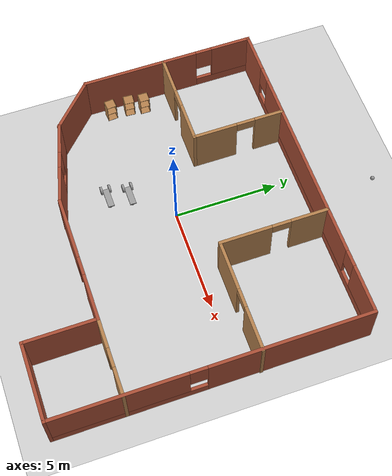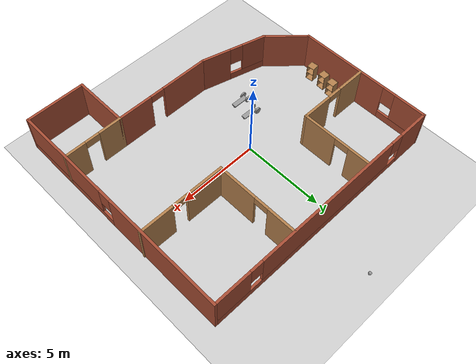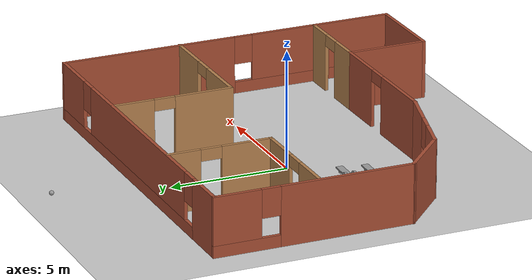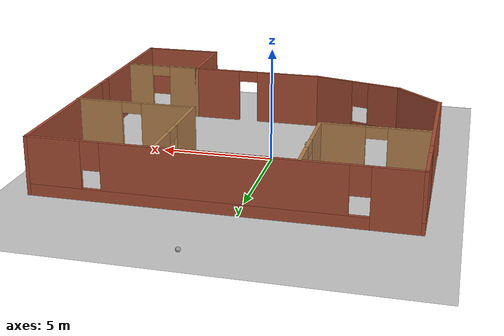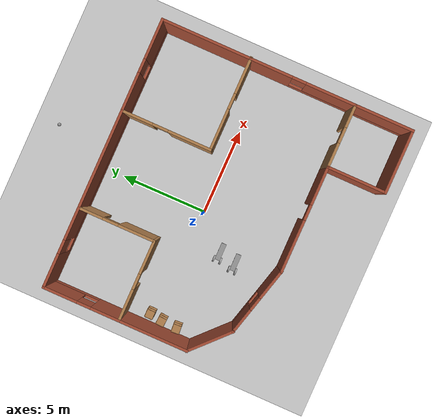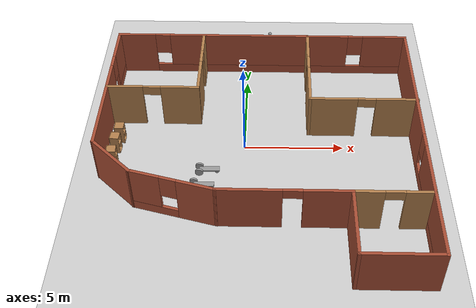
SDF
<sdf version="1.4">
 <world name="default">
  <plugin name="wellcome" filename="libwellcome.so"/>
  <light name="sun" type="directional">
   <pose>0 0 10 0 -0 0</pose>
   <diffuse>0.8 0.8 0.8 1</diffuse>
   <specular>0.2 0.2 0.2 1</specular>
   <attenuation>
    <range>1000</range>
    <constant>0.9</constant>
    <linear>0.01</linear>
    <quadratic>0.001</quadratic>
   </attenuation>
   <direction>-0.5 0.1 -0.9</direction>
  </light>
  <model name="ground_plane">
   <static>1</static>
   <link name="link">
    <collision name="collision">
     <geometry><plane><normal>0 0 1</normal><size>100 100</size></plane></geometry>
     <surface><friction><ode><mu>100</mu><mu2>50</mu2></ode></friction></surface>
    </collision>
    <visual name="visual">
     <cast_shadows>0</cast_shadows>
     <geometry><plane><normal>0 0 1</normal><size>100 100</size></plane></geometry>
     <material>
      <script><uri>file://media/materials/scripts/gazebo.material</uri><name>Gazebo/Grey</name></script>
     </material>
    </visual>
   </link>
  </model>
  <gravity>0 0 -9.8</gravity>
  <magnetic_field>6e-06 2.3e-05 -4.2e-05</magnetic_field>
  <atmosphere type="adiabatic"/>
  <physics name="default_physics" default="0" type="ode">
   <max_step_size>0.001</max_step_size>
   <real_time_factor>1</real_time_factor>
   <real_time_update_rate>1000</real_time_update_rate>
  </physics>
  <scene><ambient>0.4 0.4 0.4 1</ambient><background>0.7 0.7 0.7 1</background><shadows>1</shadows></scene>
  <spherical_coordinates>
   <surface_model>EARTH_WGS84</surface_model>
   <latitude_deg>0</latitude_deg>
   <longitude_deg>0</longitude_deg>
   <elevation>0</elevation>
   <heading_deg>0</heading_deg>
  </spherical_coordinates>
  <model name="Building1">
   <pose>0.77481 -1.15108 0 0 -0 0</pose>
   <link name="Wall_0">
    <pose>-7.80588 3.125 0 0 -0 1.5708</pose>
    <visual name="Wall_0_Visual_0">
     <pose>-1.4063 0 1.25 0 -0 0</pose>
     <geometry><box><size>5.68739 0.15 2.5</size></box></geometry>
     <material>
      <script><uri>file://media/materials/scripts/gazebo.material</uri><name>Gazebo/Bricks</name></script>
      <ambient>1 1 1 1</ambient>
     </material>
     <meta><layer>0</layer></meta>
    </visual>
    <collision name="Wall_0_Collision_0">
     <geometry><box><size>5.68739 0.15 2.5</size></box></geometry>
     <pose>-1.4063 0 1.25 0 -0 0</pose>
    </collision>
    <visual name="Wall_0_Visual_1">
     <pose>2.8437 0 0.25 0 -0 0</pose>
     <geometry><box><size>2.81261 0.15 0.5</size></box></geometry>
     <material>
      <script><uri>file://media/materials/scripts/gazebo.material</uri><name>Gazebo/Bricks</name></script>
      <ambient>1 1 1 1</ambient>
     </material>
     <meta><layer>0</layer></meta>
    </visual>
    <collision name="Wall_0_Collision_1">
     <geometry><box><size>2.81261 0.15 0.5</size></box></geometry>
     <pose>2.8437 0 0.25 0 -0 0</pose>
    </collision>
    <visual name="Wall_0_Visual_2">
     <pose>3.2437 0 1.5 0 -0 0</pose>
     <geometry><box><size>2.01261 0.15 2</size></box></geometry>
     <material>
      <script><uri>file://media/materials/scripts/gazebo.material</uri><name>Gazebo/Bricks</name></script>
      <ambient>1 1 1 1</ambient>
     </material>
     <meta><layer>0</layer></meta>
    </visual>
    <collision name="Wall_0_Collision_2">
     <geometry><box><size>2.01261 0.15 2</size></box></geometry>
     <pose>3.2437 0 1.5 0 -0 0</pose>
    </collision>
    <visual name="Wall_0_Visual_3">
     <pose>1.83739 0 1.9 0 -0 0</pose>
     <geometry><box><size>0.8 0.15 1.2</size></box></geometry>
     <material>
      <script><uri>file://media/materials/scripts/gazebo.material</uri><name>Gazebo/Bricks</name></script>
      <ambient>1 1 1 1</ambient>
     </material>
     <meta><layer>0</layer></meta>
    </visual>
    <collision name="Wall_0_Collision_3">
     <geometry><box><size>0.8 0.15 1.2</size></box></geometry>
     <pose>1.83739 0 1.9 0 -0 0</pose>
    </collision>
   </link>
   <link name="Wall_1">
    <pose>-0.00588 7.3 0 0 -0 0</pose>
    <visual name="Wall_1_Visual_0">
     <pose>-6.85763 0 1.25 0 -0 0</pose>
     <geometry><box><size>2.03474 0.15 2.5</size></box></geometry>
     <material>
      <script><uri>file://media/materials/scripts/gazebo.material</uri><name>Gazebo/Bricks</name></script>
      <ambient>1 1 1 1</ambient>
     </material>
     <meta><layer>0</layer></meta>
    </visual>
    <collision name="Wall_1_Collision_0">
     <geometry><box><size>2.03474 0.15 2.5</size></box></geometry>
     <pose>-6.85763 0 1.25 0 -0 0</pose>
    </collision>
    <visual name="Wall_1_Visual_1">
     <pose>1.01737 0 0.25 0 -0 0</pose>
     <geometry><box><size>13.7153 0.15 0.5</size></box></geometry>
     <material>
      <script><uri>file://media/materials/scripts/gazebo.material</uri><name>Gazebo/Bricks</name></script>
      <ambient>1 1 1 1</ambient>
     </material>
     <meta><layer>0</layer></meta>
    </visual>
    <collision name="Wall_1_Collision_1">
     <geometry><box><size>13.7153 0.15 0.5</size></box></geometry>
     <pose>1.01737 0 0.25 0 -0 0</pose>
    </collision>
    <visual name="Wall_1_Visual_2">
     <pose>-0.167606 0 1.5 0 -0 0</pose>
     <geometry><box><size>9.74531 0.15 2</size></box></geometry>
     <material>
      <script><uri>file://media/materials/scripts/gazebo.material</uri><name>Gazebo/Bricks</name></script>
      <ambient>1 1 1 1</ambient>
     </material>
     <meta><layer>0</layer></meta>
    </visual>
    <collision name="Wall_1_Collision_2">
     <geometry><box><size>9.74531 0.15 2</size></box></geometry>
     <pose>-0.167606 0 1.5 0 -0 0</pose>
    </collision>
    <visual name="Wall_1_Visual_3">
     <pose>6.69002 0 1.5 0 -0 0</pose>
     <geometry><box><size>2.36995 0.15 2</size></box></geometry>
     <material>
      <script><uri>file://media/materials/scripts/gazebo.material</uri><name>Gazebo/Bricks</name></script>
      <ambient>1 1 1 1</ambient>
     </material>
     <meta><layer>0</layer></meta>
    </visual>
    <collision name="Wall_1_Collision_3">
     <geometry><box><size>2.36995 0.15 2</size></box></geometry>
     <pose>6.69002 0 1.5 0 -0 0</pose>
    </collision>
    <visual name="Wall_1_Visual_4">
     <pose>-5.44026 0 1.9 0 -0 0</pose>
     <geometry><box><size>0.8 0.15 1.2</size></box></geometry>
     <material>
      <script><uri>file://media/materials/scripts/gazebo.material</uri><name>Gazebo/Bricks</name></script>
      <ambient>1 1 1 1</ambient>
     </material>
     <meta><layer>0</layer></meta>
    </visual>
    <collision name="Wall_1_Collision_4">
     <geometry><box><size>0.8 0.15 1.2</size></box></geometry>
     <pose>-5.44026 0 1.9 0 -0 0</pose>
    </collision>
    <visual name="Wall_1_Visual_5">
     <pose>5.10505 0 1.9 0 -0 0</pose>
     <geometry><box><size>0.8 0.15 1.2</size></box></geometry>
     <material>
      <script><uri>file://media/materials/scripts/gazebo.material</uri><name>Gazebo/Bricks</name></script>
      <ambient>1 1 1 1</ambient>
     </material>
     <meta><layer>0</layer></meta>
    </visual>
    <collision name="Wall_1_Collision_5">
     <geometry><box><size>0.8 0.15 1.2</size></box></geometry>
     <pose>5.10505 0 1.9 0 -0 0</pose>
    </collision>
   </link>
   <link name="Wall_10">
    <pose>-5.47687 2.90704 0 0 -0 3.14159</pose>
    <visual name="Wall_10_Visual_0">
     <pose>-1.38853 0 1.25 0 -0 0</pose>
     <geometry><box><size>1.97295 0.15 2.5</size></box></geometry>
     <material>
      <script><uri>file://media/materials/scripts/gazebo.material</uri><name>Gazebo/Wood</name></script>
      <ambient>1 1 1 1</ambient>
     </material>
     <meta><layer>0</layer></meta>
    </visual>
    <collision name="Wall_10_Collision_0">
     <geometry><box><size>1.97295 0.15 2.5</size></box></geometry>
     <pose>-1.38853 0 1.25 0 -0 0</pose>
    </collision>
    <visual name="Wall_10_Visual_1">
     <pose>1.43647 0 1.25 0 -0 0</pose>
     <geometry><box><size>1.87705 0.15 2.5</size></box></geometry>
     <material>
      <script><uri>file://media/materials/scripts/gazebo.material</uri><name>Gazebo/Wood</name></script>
      <ambient>1 1 1 1</ambient>
     </material>
     <meta><layer>0</layer></meta>
    </visual>
    <collision name="Wall_10_Collision_1">
     <geometry><box><size>1.87705 0.15 2.5</size></box></geometry>
     <pose>1.43647 0 1.25 0 -0 0</pose>
    </collision>
    <visual name="Wall_10_Visual_2">
     <pose>0.047946 0 2.25 0 -0 0</pose>
     <geometry><box><size>0.9 0.15 0.5</size></box></geometry>
     <material>
      <script><uri>file://media/materials/scripts/gazebo.material</uri><name>Gazebo/Wood</name></script>
      <ambient>1 1 1 1</ambient>
     </material>
     <meta><layer>0</layer></meta>
    </visual>
    <collision name="Wall_10_Collision_2">
     <geometry><box><size>0.9 0.15 0.5</size></box></geometry>
     <pose>0.047946 0 2.25 0 -0 0</pose>
    </collision>
   </link>
   <link name="Wall_12">
    <pose>5.99412 -3.95 0 0 -0 0</pose>
    <visual name="Wall_12_Visual_0">
     <pose>-1.13506 0 1.25 0 -0 0</pose>
     <geometry><box><size>1.47988 0.15 2.5</size></box></geometry>
     <material>
      <script><uri>file://media/materials/scripts/gazebo.material</uri><name>Gazebo/Wood</name></script>
      <ambient>1 1 1 1</ambient>
     </material>
     <meta><layer>0</layer></meta>
    </visual>
    <collision name="Wall_12_Collision_0">
     <geometry><box><size>1.47988 0.15 2.5</size></box></geometry>
     <pose>-1.13506 0 1.25 0 -0 0</pose>
    </collision>
    <visual name="Wall_12_Visual_1">
     <pose>1.18994 0 1.25 0 -0 0</pose>
     <geometry><box><size>1.37013 0.15 2.5</size></box></geometry>
     <material>
      <script><uri>file://media/materials/scripts/gazebo.material</uri><name>Gazebo/Wood</name></script>
      <ambient>1 1 1 1</ambient>
     </material>
     <meta><layer>0</layer></meta>
    </visual>
    <collision name="Wall_12_Collision_1">
     <geometry><box><size>1.37013 0.15 2.5</size></box></geometry>
     <pose>1.18994 0 1.25 0 -0 0</pose>
    </collision>
    <visual name="Wall_12_Visual_2">
     <pose>0.054875 0 2.25 0 -0 0</pose>
     <geometry><box><size>0.9 0.15 0.5</size></box></geometry>
     <material>
      <script><uri>file://media/materials/scripts/gazebo.material</uri><name>Gazebo/Wood</name></script>
      <ambient>1 1 1 1</ambient>
     </material>
     <meta><layer>0</layer></meta>
    </visual>
    <collision name="Wall_12_Collision_2">
     <geometry><box><size>0.9 0.15 0.5</size></box></geometry>
     <pose>0.054875 0 2.25 0 -0 0</pose>
    </collision>
   </link>
   <link name="Wall_17">
    <pose>2.48691 4.70704 0 0 0 -1.5708</pose>
    <visual name="Wall_17_Visual_0">
     <pose>-1.71972 0 1.25 0 -0 0</pose>
     <geometry><box><size>1.81055 0.15 2.5</size></box></geometry>
     <material>
      <script><uri>file://media/materials/scripts/gazebo.material</uri><name>Gazebo/Wood</name></script>
      <ambient>1 1 1 1</ambient>
     </material>
     <meta><layer>0</layer></meta>
    </visual>
    <collision name="Wall_17_Collision_0">
     <geometry><box><size>1.81055 0.15 2.5</size></box></geometry>
     <pose>-1.71972 0 1.25 0 -0 0</pose>
    </collision>
    <visual name="Wall_17_Visual_1">
     <pose>1.35528 0 1.25 0 -0 0</pose>
     <geometry><box><size>2.53945 0.15 2.5</size></box></geometry>
     <material>
      <script><uri>file://media/materials/scripts/gazebo.material</uri><name>Gazebo/Wood</name></script>
      <ambient>1 1 1 1</ambient>
     </material>
     <meta><layer>0</layer></meta>
    </visual>
    <collision name="Wall_17_Collision_1">
     <geometry><box><size>2.53945 0.15 2.5</size></box></geometry>
     <pose>1.35528 0 1.25 0 -0 0</pose>
    </collision>
    <visual name="Wall_17_Visual_2">
     <pose>-0.364448 0 2.25 0 -0 0</pose>
     <geometry><box><size>0.9 0.15 0.5</size></box></geometry>
     <material>
      <script><uri>file://media/materials/scripts/gazebo.material</uri><name>Gazebo/Wood</name></script>
      <ambient>1 1 1 1</ambient>
     </material>
     <meta><layer>0</layer></meta>
    </visual>
    <collision name="Wall_17_Collision_2">
     <geometry><box><size>0.9 0.15 0.5</size></box></geometry>
     <pose>-0.364448 0 2.25 0 -0 0</pose>
    </collision>
   </link>
   <link name="Wall_18">
    <pose>5.16191 2.15704 0 0 -0 0</pose>
    <visual name="Wall_18_Visual_0">
     <pose>-1.52583 0 1.25 0 -0 0</pose>
     <geometry><box><size>2.44833 0.15 2.5</size></box></geometry>
     <material>
      <script><uri>file://media/materials/scripts/gazebo.material</uri><name>Gazebo/Wood</name></script>
      <ambient>1 1 1 1</ambient>
     </material>
     <meta><layer>0</layer></meta>
    </visual>
    <collision name="Wall_18_Collision_0">
     <geometry><box><size>2.44833 0.15 2.5</size></box></geometry>
     <pose>-1.52583 0 1.25 0 -0 0</pose>
    </collision>
    <visual name="Wall_18_Visual_1">
     <pose>1.67417 0 1.25 0 -0 0</pose>
     <geometry><box><size>2.15167 0.15 2.5</size></box></geometry>
     <material>
      <script><uri>file://media/materials/scripts/gazebo.material</uri><name>Gazebo/Wood</name></script>
      <ambient>1 1 1 1</ambient>
     </material>
     <meta><layer>0</layer></meta>
    </visual>
    <collision name="Wall_18_Collision_1">
     <geometry><box><size>2.15167 0.15 2.5</size></box></geometry>
     <pose>1.67417 0 1.25 0 -0 0</pose>
    </collision>
    <visual name="Wall_18_Visual_2">
     <pose>0.148333 0 2.25 0 -0 0</pose>
     <geometry><box><size>0.9 0.15 0.5</size></box></geometry>
     <material>
      <script><uri>file://media/materials/scripts/gazebo.material</uri><name>Gazebo/Wood</name></script>
      <ambient>1 1 1 1</ambient>
     </material>
     <meta><layer>0</layer></meta>
    </visual>
    <collision name="Wall_18_Collision_2">
     <geometry><box><size>0.9 0.15 0.5</size></box></geometry>
     <pose>0.148333 0 2.25 0 -0 0</pose>
    </collision>
   </link>
   <link name="Wall_2">
    <pose>7.79412 0 0 0 0 -1.5708</pose>
    <visual name="Wall_2_Visual_0">
     <pose>-3.54908 0 1.25 0 -0 0</pose>
     <geometry><box><size>7.65185 0.15 2.5</size></box></geometry>
     <material>
      <script><uri>file://media/materials/scripts/gazebo.material</uri><name>Gazebo/Bricks</name></script>
      <ambient>1 1 1 1</ambient>
     </material>
     <meta><layer>0</layer></meta>
    </visual>
    <collision name="Wall_2_Collision_0">
     <geometry><box><size>7.65185 0.15 2.5</size></box></geometry>
     <pose>-3.54908 0 1.25 0 -0 0</pose>
    </collision>
    <visual name="Wall_2_Visual_1">
     <pose>3.82592 0 0.25 0 -0 0</pose>
     <geometry><box><size>7.09815 0.15 0.5</size></box></geometry>
     <material>
      <script><uri>file://media/materials/scripts/gazebo.material</uri><name>Gazebo/Bricks</name></script>
      <ambient>1 1 1 1</ambient>
     </material>
     <meta><layer>0</layer></meta>
    </visual>
    <collision name="Wall_2_Collision_1">
     <geometry><box><size>7.09815 0.15 0.5</size></box></geometry>
     <pose>3.82592 0 0.25 0 -0 0</pose>
    </collision>
    <visual name="Wall_2_Visual_2">
     <pose>4.22592 0 1.5 0 -0 0</pose>
     <geometry><box><size>6.29815 0.15 2</size></box></geometry>
     <material>
      <script><uri>file://media/materials/scripts/gazebo.material</uri><name>Gazebo/Bricks</name></script>
      <ambient>1 1 1 1</ambient>
     </material>
     <meta><layer>0</layer></meta>
    </visual>
    <collision name="Wall_2_Collision_2">
     <geometry><box><size>6.29815 0.15 2</size></box></geometry>
     <pose>4.22592 0 1.5 0 -0 0</pose>
    </collision>
    <visual name="Wall_2_Visual_3">
     <pose>0.676848 0 1.9 0 -0 0</pose>
     <geometry><box><size>0.8 0.15 1.2</size></box></geometry>
     <material>
      <script><uri>file://media/materials/scripts/gazebo.material</uri><name>Gazebo/Bricks</name></script>
      <ambient>1 1 1 1</ambient>
     </material>
     <meta><layer>0</layer></meta>
    </visual>
    <collision name="Wall_2_Collision_3">
     <geometry><box><size>0.8 0.15 1.2</size></box></geometry>
     <pose>0.676848 0 1.9 0 -0 0</pose>
    </collision>
   </link>
   <link name="Wall_3">
    <collision name="Wall_3_Collision">
     <geometry><box><size>3.75 0.15 2.5</size></box></geometry>
     <pose>0 0 1.25 0 -0 0</pose>
    </collision>
    <visual name="Wall_3_Visual">
     <pose>0 0 1.25 0 -0 0</pose>
     <geometry><box><size>3.75 0.15 2.5</size></box></geometry>
     <material>
      <script><uri>file://media/materials/scripts/gazebo.material</uri><name>Gazebo/Bricks</name></script>
      <ambient>1 1 1 1</ambient>
     </material>
     <meta><layer>0</layer></meta>
    </visual>
    <pose>5.99412 -7.3 0 0 -0 3.14159</pose>
   </link>
   <link name="Wall_4">
    <collision name="Wall_4_Collision">
     <geometry><box><size>3.5 0.15 2.5</size></box></geometry>
     <pose>0 0 1.25 0 -0 0</pose>
    </collision>
    <visual name="Wall_4_Visual">
     <pose>0 0 1.25 0 -0 0</pose>
     <geometry><box><size>3.5 0.15 2.5</size></box></geometry>
     <material>
      <script><uri>file://media/materials/scripts/gazebo.material</uri><name>Gazebo/Bricks</name></script>
      <ambient>1 1 1 1</ambient>
     </material>
     <meta><layer>0</layer></meta>
    </visual>
    <pose>4.19412 -5.625 0 0 -0 1.5708</pose>
   </link>
   <link name="Wall_5">
    <pose>1.14412 -3.95 0 0 -0 3.14159</pose>
    <visual name="Wall_5_Visual_0">
     <pose>-1.9885 0 1.25 0 -0 0</pose>
     <geometry><box><size>2.27301 0.15 2.5</size></box></geometry>
     <material>
      <script><uri>file://media/materials/scripts/gazebo.material</uri><name>Gazebo/Bricks</name></script>
      <ambient>1 1 1 1</ambient>
     </material>
     <meta><layer>0</layer></meta>
    </visual>
    <collision name="Wall_5_Collision_0">
     <geometry><box><size>2.27301 0.15 2.5</size></box></geometry>
     <pose>-1.9885 0 1.25 0 -0 0</pose>
    </collision>
    <visual name="Wall_5_Visual_1">
     <pose>1.5865 0 1.25 0 -0 0</pose>
     <geometry><box><size>3.07699 0.15 2.5</size></box></geometry>
     <material>
      <script><uri>file://media/materials/scripts/gazebo.material</uri><name>Gazebo/Bricks</name></script>
      <ambient>1 1 1 1</ambient>
     </material>
     <meta><layer>0</layer></meta>
    </visual>
    <collision name="Wall_5_Collision_1">
     <geometry><box><size>3.07699 0.15 2.5</size></box></geometry>
     <pose>1.5865 0 1.25 0 -0 0</pose>
    </collision>
    <visual name="Wall_5_Visual_2">
     <pose>-0.401994 0 2.25 0 -0 0</pose>
     <geometry><box><size>0.9 0.15 0.5</size></box></geometry>
     <material>
      <script><uri>file://media/materials/scripts/gazebo.material</uri><name>Gazebo/Bricks</name></script>
      <ambient>1 1 1 1</ambient>
     </material>
     <meta><layer>0</layer></meta>
    </visual>
    <collision name="Wall_5_Collision_2">
     <geometry><box><size>0.9 0.15 0.5</size></box></geometry>
     <pose>-0.401994 0 2.25 0 -0 0</pose>
    </collision>
   </link>
   <link name="Wall_6">
    <pose>-3.88603 -3.41942 0 0 -0 2.87979</pose>
    <visual name="Wall_6_Visual_0">
     <pose>-1.17839 0 1.25 0 -0 0</pose>
     <geometry><box><size>1.89321 0.15 2.5</size></box></geometry>
     <material>
      <script><uri>file://media/materials/scripts/gazebo.material</uri><name>Gazebo/Bricks</name></script>
      <ambient>1 1 1 1</ambient>
     </material>
     <meta><layer>0</layer></meta>
    </visual>
    <collision name="Wall_6_Collision_0">
     <geometry><box><size>1.89321 0.15 2.5</size></box></geometry>
     <pose>-1.17839 0 1.25 0 -0 0</pose>
    </collision>
    <visual name="Wall_6_Visual_1">
     <pose>0.946606 0 0.25 0 -0 0</pose>
     <geometry><box><size>2.35679 0.15 0.5</size></box></geometry>
     <material>
      <script><uri>file://media/materials/scripts/gazebo.material</uri><name>Gazebo/Bricks</name></script>
      <ambient>1 1 1 1</ambient>
     </material>
     <meta><layer>0</layer></meta>
    </visual>
    <collision name="Wall_6_Collision_1">
     <geometry><box><size>2.35679 0.15 0.5</size></box></geometry>
     <pose>0.946606 0 0.25 0 -0 0</pose>
    </collision>
    <visual name="Wall_6_Visual_2">
     <pose>1.34661 0 1.5 0 -0 0</pose>
     <geometry><box><size>1.55679 0.15 2</size></box></geometry>
     <material>
      <script><uri>file://media/materials/scripts/gazebo.material</uri><name>Gazebo/Bricks</name></script>
      <ambient>1 1 1 1</ambient>
     </material>
     <meta><layer>0</layer></meta>
    </visual>
    <collision name="Wall_6_Collision_2">
     <geometry><box><size>1.55679 0.15 2</size></box></geometry>
     <pose>1.34661 0 1.5 0 -0 0</pose>
    </collision>
    <visual name="Wall_6_Visual_3">
     <pose>0.168212 0 1.9 0 -0 0</pose>
     <geometry><box><size>0.8 0.15 1.2</size></box></geometry>
     <material>
      <script><uri>file://media/materials/scripts/gazebo.material</uri><name>Gazebo/Bricks</name></script>
      <ambient>1 1 1 1</ambient>
     </material>
     <meta><layer>0</layer></meta>
    </visual>
    <collision name="Wall_6_Collision_3">
     <geometry><box><size>0.8 0.15 1.2</size></box></geometry>
     <pose>0.168212 0 1.9 0 -0 0</pose>
    </collision>
   </link>
   <link name="Wall_7">
    <collision name="Wall_7_Collision">
     <geometry><box><size>2.82279 0.15 2.5</size></box></geometry>
     <pose>0 0 1.25 0 -0 0</pose>
    </collision>
    <visual name="Wall_7_Visual">
     <pose>0 0 1.25 0 -0 0</pose>
     <geometry><box><size>2.82279 0.15 2.5</size></box></geometry>
     <material>
      <script><uri>file://media/materials/scripts/gazebo.material</uri><name>Gazebo/Bricks</name></script>
      <ambient>1 1 1 1</ambient>
     </material>
     <meta><layer>0</layer></meta>
    </visual>
    <pose>-6.83603 -1.96942 0 0 -0 2.38288</pose>
   </link>
   <link name="Wall_9">
    <pose>-3.17687 5.08204 0 0 0 -1.5708</pose>
    <visual name="Wall_9_Visual_0">
     <pose>-1.53821 0 1.25 0 -0 0</pose>
     <geometry><box><size>1.42359 0.15 2.5</size></box></geometry>
     <material>
      <script><uri>file://media/materials/scripts/gazebo.material</uri><name>Gazebo/Wood</name></script>
      <ambient>1 1 1 1</ambient>
     </material>
     <meta><layer>0</layer></meta>
    </visual>
    <collision name="Wall_9_Collision_0">
     <geometry><box><size>1.42359 0.15 2.5</size></box></geometry>
     <pose>-1.53821 0 1.25 0 -0 0</pose>
    </collision>
    <visual name="Wall_9_Visual_1">
     <pose>1.16179 0 1.25 0 -0 0</pose>
     <geometry><box><size>2.17641 0.15 2.5</size></box></geometry>
     <material>
      <script><uri>file://media/materials/scripts/gazebo.material</uri><name>Gazebo/Wood</name></script>
      <ambient>1 1 1 1</ambient>
     </material>
     <meta><layer>0</layer></meta>
    </visual>
    <collision name="Wall_9_Collision_1">
     <geometry><box><size>2.17641 0.15 2.5</size></box></geometry>
     <pose>1.16179 0 1.25 0 -0 0</pose>
    </collision>
    <visual name="Wall_9_Visual_2">
     <pose>-0.376414 0 2.25 0 -0 0</pose>
     <geometry><box><size>0.9 0.15 0.5</size></box></geometry>
     <material>
      <script><uri>file://media/materials/scripts/gazebo.material</uri><name>Gazebo/Wood</name></script>
      <ambient>1 1 1 1</ambient>
     </material>
     <meta><layer>0</layer></meta>
    </visual>
    <collision name="Wall_9_Collision_2">
     <geometry><box><size>0.9 0.15 0.5</size></box></geometry>
     <pose>-0.376414 0 2.25 0 -0 0</pose>
    </collision>
   </link>
   <static>1</static>
  </model>
  <model name="Car">
   <link name="link_0">
    <pose>0.16 0.005005 0.0325 0 -0 0</pose>
    <inertial>
     <mass>1</mass>
     <inertia>
      <ixx>0.166667</ixx>
      <ixy>0</ixy>
      <ixz>0</ixz>
      <iyy>0.166667</iyy>
      <iyz>0</iyz>
      <izz>0.166667</izz>
     </inertia>
    </inertial>
    <visual name="visual">
     <geometry><box><size>1 0.3 0.06</size></box></geometry>
     <material>
      <lighting>1</lighting>
      <script><uri>file://media/materials/scripts/gazebo.material</uri><name>Gazebo/Grey</name></script>
      <ambient>0.3 0.3 0.3 1</ambient>
      <diffuse>0.7 0.7 0.7 1</diffuse>
      <specular>0.01 0.01 0.01 1</specular>
      <emissive>0 0 0 1</emissive>
      <shader type="vertex"><normal_map>__default__</normal_map></shader>
     </material>
    </visual>
    <collision name="collision">
     <geometry><box><size>1 0.3 0.06</size></box></geometry>
     <surface>
      <friction>
       <ode><mu>1</mu><mu2>1</mu2><fdir1>0 0 0</fdir1><slip1>0</slip1><slip2>0</slip2></ode>
       <torsional>
        <coefficient>1</coefficient>
        <patch_radius>0</patch_radius>
        <surface_radius>0</surface_radius>
        <use_patch_radius>1</use_patch_radius>
        <ode><slip>0</slip></ode>
       </torsional>
      </friction>
      <bounce><restitution_coefficient>0</restitution_coefficient><threshold>1e+06</threshold></bounce>
      <contact>
       <collide_without_contact>0</collide_without_contact>
       <collide_without_contact_bitmask>1</collide_without_contact_bitmask>
       <collide_bitmask>1</collide_bitmask>
       <ode>
        <soft_cfm>0</soft_cfm>
        <soft_erp>0.2</soft_erp>
        <kp>1e+13</kp>
        <kd>1</kd>
        <max_vel>0.01</max_vel>
        <min_depth>0</min_depth>
       </ode>
       <bullet>
        <split_impulse>1</split_impulse>
        <split_impulse_penetration_threshold>-0.01</split_impulse_penetration_threshold>
        <soft_cfm>0</soft_cfm>
        <soft_erp>0.2</soft_erp>
        <kp>1e+13</kp>
        <kd>1</kd>
       </bullet>
      </contact>
     </surface>
    </collision>
   </link>
   <link name="link_1">
    <pose>-0.34 0.205005 0.0325 1.5707 -0 0</pose>
    <inertial>
     <mass>1</mass>
     <inertia><ixx>0.145833</ixx><ixy>0</ixy><ixz>0</ixz><iyy>0.145833</iyy><iyz>0</iyz><izz>0.125</izz></inertia>
    </inertial>
    <visual name="visual">
     <geometry><cylinder><radius>0.2</radius><length>0.1</length></cylinder></geometry>
     <material>
      <lighting>1</lighting>
      <script><uri>file://media/materials/scripts/gazebo.material</uri><name>Gazebo/Grey</name></script>
      <ambient>0.3 0.3 0.3 1</ambient>
      <diffuse>0.7 0.7 0.7 1</diffuse>
      <specular>0.01 0.01 0.01 1</specular>
      <emissive>0 0 0 1</emissive>
      <shader type="vertex"><normal_map>__default__</normal_map></shader>
     </material>
    </visual>
    <collision name="collision">
     <geometry><cylinder><radius>0.2</radius><length>0.1</length></cylinder></geometry>
     <surface>
      <friction>
       <ode><mu>1</mu><mu2>1</mu2><fdir1>0 0 0</fdir1><slip1>0</slip1><slip2>0</slip2></ode>
       <torsional>
        <coefficient>1</coefficient>
        <patch_radius>0</patch_radius>
        <surface_radius>0</surface_radius>
        <use_patch_radius>1</use_patch_radius>
        <ode><slip>0</slip></ode>
       </torsional>
      </friction>
      <bounce><restitution_coefficient>0</restitution_coefficient><threshold>1e+06</threshold></bounce>
      <contact>
       <collide_without_contact>0</collide_without_contact>
       <collide_without_contact_bitmask>1</collide_without_contact_bitmask>
       <collide_bitmask>1</collide_bitmask>
       <ode>
        <soft_cfm>0</soft_cfm>
        <soft_erp>0.2</soft_erp>
        <kp>1e+13</kp>
        <kd>1</kd>
        <max_vel>0.01</max_vel>
        <min_depth>0</min_depth>
       </ode>
       <bullet>
        <split_impulse>1</split_impulse>
        <split_impulse_penetration_threshold>-0.01</split_impulse_penetration_threshold>
        <soft_cfm>0</soft_cfm>
        <soft_erp>0.2</soft_erp>
        <kp>1e+13</kp>
        <kd>1</kd>
       </bullet>
      </contact>
     </surface>
    </collision>
   </link>
   <link name="link_1_clone">
    <pose>-0.34 -0.195014 0.0325 1.5707 -0 0</pose>
    <inertial>
     <mass>1</mass>
     <inertia><ixx>0.145833</ixx><ixy>0</ixy><ixz>0</ixz><iyy>0.145833</iyy><iyz>0</iyz><izz>0.125</izz></inertia>
    </inertial>
    <visual name="visual">
     <geometry><cylinder><radius>0.2</radius><length>0.1</length></cylinder></geometry>
     <material>
      <lighting>1</lighting>
      <script><uri>file://media/materials/scripts/gazebo.material</uri><name>Gazebo/Grey</name></script>
      <ambient>0.3 0.3 0.3 1</ambient>
      <diffuse>0.7 0.7 0.7 1</diffuse>
      <specular>0.01 0.01 0.01 1</specular>
      <emissive>0 0 0 1</emissive>
      <shader type="vertex"><normal_map>__default__</normal_map></shader>
     </material>
    </visual>
    <collision name="collision">
     <geometry><cylinder><radius>0.2</radius><length>0.1</length></cylinder></geometry>
     <surface>
      <friction>
       <ode><mu>1</mu><mu2>1</mu2><fdir1>0 0 0</fdir1><slip1>0</slip1><slip2>0</slip2></ode>
       <torsional>
        <coefficient>1</coefficient>
        <patch_radius>0</patch_radius>
        <surface_radius>0</surface_radius>
        <use_patch_radius>1</use_patch_radius>
        <ode><slip>0</slip></ode>
       </torsional>
      </friction>
      <bounce><restitution_coefficient>0</restitution_coefficient><threshold>1e+06</threshold></bounce>
      <contact>
       <collide_without_contact>0</collide_without_contact>
       <collide_without_contact_bitmask>1</collide_without_contact_bitmask>
       <collide_bitmask>1</collide_bitmask>
       <ode>
        <soft_cfm>0</soft_cfm>
        <soft_erp>0.2</soft_erp>
        <kp>1e+13</kp>
        <kd>1</kd>
        <max_vel>0.01</max_vel>
        <min_depth>0</min_depth>
       </ode>
       <bullet>
        <split_impulse>1</split_impulse>
        <split_impulse_penetration_threshold>-0.01</split_impulse_penetration_threshold>
        <soft_cfm>0</soft_cfm>
        <soft_erp>0.2</soft_erp>
        <kp>1e+13</kp>
        <kd>1</kd>
       </bullet>
      </contact>
     </surface>
    </collision>
   </link>
   <link name="link_2">
    <pose>0.52 -0.014995 -0.0975 0 -0 0</pose>
    <inertial>
     <mass>1</mass>
     <inertia><ixx>0.1</ixx><ixy>0</ixy><ixz>0</ixz><iyy>0.1</iyy><iyz>0</iyz><izz>0.1</izz></inertia>
    </inertial>
    <visual name="visual">
     <geometry><sphere><radius>0.1</radius></sphere></geometry>
     <material>
      <lighting>1</lighting>
      <script><uri>file://media/materials/scripts/gazebo.material</uri><name>Gazebo/Grey</name></script>
      <ambient>0.3 0.3 0.3 1</ambient>
      <diffuse>0.7 0.7 0.7 1</diffuse>
      <specular>0.01 0.01 0.01 1</specular>
      <emissive>0 0 0 1</emissive>
      <shader type="vertex"><normal_map>__default__</normal_map></shader>
     </material>
    </visual>
    <collision name="collision">
     <geometry><sphere><radius>0.1</radius></sphere></geometry>
     <surface>
      <friction>
       <ode><mu>1</mu><mu2>1</mu2><fdir1>0 0 0</fdir1><slip1>0</slip1><slip2>0</slip2></ode>
       <torsional>
        <coefficient>1</coefficient>
        <patch_radius>0</patch_radius>
        <surface_radius>0</surface_radius>
        <use_patch_radius>1</use_patch_radius>
        <ode><slip>0</slip></ode>
       </torsional>
      </friction>
      <bounce><restitution_coefficient>0</restitution_coefficient><threshold>1e+06</threshold></bounce>
      <contact>
       <collide_without_contact>0</collide_without_contact>
       <collide_without_contact_bitmask>1</collide_without_contact_bitmask>
       <collide_bitmask>1</collide_bitmask>
       <ode>
        <soft_cfm>0</soft_cfm>
        <soft_erp>0.2</soft_erp>
        <kp>1e+13</kp>
        <kd>1</kd>
        <max_vel>0.01</max_vel>
        <min_depth>0</min_depth>
       </ode>
       <bullet>
        <split_impulse>1</split_impulse>
        <split_impulse_penetration_threshold>-0.01</split_impulse_penetration_threshold>
        <soft_cfm>0</soft_cfm>
        <soft_erp>0.2</soft_erp>
        <kp>1e+13</kp>
        <kd>1</kd>
       </bullet>
      </contact>
     </surface>
    </collision>
   </link>
   <joint name="link_0_JOINT_1" type="revolute">
    <parent>link_0</parent>
    <child>link_1</child>
    <axis>
     <xyz>0 0 1</xyz>
     <use_parent_model_frame>0</use_parent_model_frame>
     <limit>
      <lower>-1.79769e+308</lower>
      <upper>1.79769e+308</upper>
      <effort>-1</effort>
      <velocity>-1</velocity>
     </limit>
     <dynamics>
      <spring_reference>0</spring_reference>
      <spring_stiffness>0</spring_stiffness>
      <damping>0</damping>
     </dynamics>
    </axis>
    <physics>
     <ode><limit><cfm>0</cfm><erp>0.2</erp></limit><suspension><cfm>0</cfm><erp>0.2</erp></suspension></ode>
    </physics>
   </joint>
   <joint name="link_0_JOINT_2" type="revolute">
    <parent>link_0</parent>
    <child>link_1_clone</child>
    <axis>
     <xyz>0 0 -1</xyz>
     <use_parent_model_frame>0</use_parent_model_frame>
     <limit>
      <lower>-1.79769e+308</lower>
      <upper>1.79769e+308</upper>
      <effort>-1</effort>
      <velocity>-1</velocity>
     </limit>
     <dynamics>
      <spring_reference>0</spring_reference>
      <spring_stiffness>0</spring_stiffness>
      <damping>0</damping>
     </dynamics>
    </axis>
    <physics>
     <ode><limit><cfm>0</cfm><erp>0.2</erp></limit><suspension><cfm>0</cfm><erp>0.2</erp></suspension></ode>
    </physics>
   </joint>
   <joint name="link_0_JOINT_5" type="revolute">
    <parent>link_0</parent>
    <child>link_2</child>
    <axis>
     <xyz>0 0 1</xyz>
     <use_parent_model_frame>0</use_parent_model_frame>
     <limit>
      <lower>-1.79769e+308</lower>
      <upper>1.79769e+308</upper>
      <effort>-1</effort>
      <velocity>-1</velocity>
     </limit>
     <dynamics>
      <spring_reference>0</spring_reference>
      <spring_stiffness>0</spring_stiffness>
      <damping>0</damping>
     </dynamics>
    </axis>
    <physics>
     <ode><limit><cfm>0</cfm><erp>0.2</erp></limit><suspension><cfm>0</cfm><erp>0.2</erp></suspension></ode>
    </physics>
   </joint>
   <static>0</static>
   <pose>-1.83537 -1.77086 0.179349 -0 -0.034784 0.006201</pose>
  </model>
  <model name="Car_0">
   <link name="link_0">
    <pose>0.16 0.005005 0.0325 0 -0 0</pose>
    <inertial>
     <mass>1</mass>
     <inertia>
      <ixx>0.166667</ixx>
      <ixy>0</ixy>
      <ixz>0</ixz>
      <iyy>0.166667</iyy>
      <iyz>0</iyz>
      <izz>0.166667</izz>
     </inertia>
    </inertial>
    <visual name="visual">
     <geometry><box><size>1 0.3 0.06</size></box></geometry>
     <material>
      <lighting>1</lighting>
      <script><uri>file://media/materials/scripts/gazebo.material</uri><name>Gazebo/Grey</name></script>
      <ambient>0.3 0.3 0.3 1</ambient>
      <diffuse>0.7 0.7 0.7 1</diffuse>
      <specular>0.01 0.01 0.01 1</specular>
      <emissive>0 0 0 1</emissive>
      <shader type="vertex"><normal_map>__default__</normal_map></shader>
     </material>
    </visual>
    <collision name="collision">
     <geometry><box><size>1 0.3 0.06</size></box></geometry>
     <surface>
      <friction>
       <ode><mu>1</mu><mu2>1</mu2><fdir1>0 0 0</fdir1><slip1>0</slip1><slip2>0</slip2></ode>
       <torsional>
        <coefficient>1</coefficient>
        <patch_radius>0</patch_radius>
        <surface_radius>0</surface_radius>
        <use_patch_radius>1</use_patch_radius>
        <ode><slip>0</slip></ode>
       </torsional>
      </friction>
      <bounce><restitution_coefficient>0</restitution_coefficient><threshold>1e+06</threshold></bounce>
      <contact>
       <collide_without_contact>0</collide_without_contact>
       <collide_without_contact_bitmask>1</collide_without_contact_bitmask>
       <collide_bitmask>1</collide_bitmask>
       <ode>
        <soft_cfm>0</soft_cfm>
        <soft_erp>0.2</soft_erp>
        <kp>1e+13</kp>
        <kd>1</kd>
        <max_vel>0.01</max_vel>
        <min_depth>0</min_depth>
       </ode>
       <bullet>
        <split_impulse>1</split_impulse>
        <split_impulse_penetration_threshold>-0.01</split_impulse_penetration_threshold>
        <soft_cfm>0</soft_cfm>
        <soft_erp>0.2</soft_erp>
        <kp>1e+13</kp>
        <kd>1</kd>
       </bullet>
      </contact>
     </surface>
    </collision>
   </link>
   <link name="link_1">
    <pose>-0.34 0.205005 0.0325 1.5707 -0 0</pose>
    <inertial>
     <mass>1</mass>
     <inertia><ixx>0.145833</ixx><ixy>0</ixy><ixz>0</ixz><iyy>0.145833</iyy><iyz>0</iyz><izz>0.125</izz></inertia>
    </inertial>
    <visual name="visual">
     <geometry><cylinder><radius>0.2</radius><length>0.1</length></cylinder></geometry>
     <material>
      <lighting>1</lighting>
      <script><uri>file://media/materials/scripts/gazebo.material</uri><name>Gazebo/Grey</name></script>
      <ambient>0.3 0.3 0.3 1</ambient>
      <diffuse>0.7 0.7 0.7 1</diffuse>
      <specular>0.01 0.01 0.01 1</specular>
      <emissive>0 0 0 1</emissive>
      <shader type="vertex"><normal_map>__default__</normal_map></shader>
     </material>
    </visual>
    <collision name="collision">
     <geometry><cylinder><radius>0.2</radius><length>0.1</length></cylinder></geometry>
     <surface>
      <friction>
       <ode><mu>1</mu><mu2>1</mu2><fdir1>0 0 0</fdir1><slip1>0</slip1><slip2>0</slip2></ode>
       <torsional>
        <coefficient>1</coefficient>
        <patch_radius>0</patch_radius>
        <surface_radius>0</surface_radius>
        <use_patch_radius>1</use_patch_radius>
        <ode><slip>0</slip></ode>
       </torsional>
      </friction>
      <bounce><restitution_coefficient>0</restitution_coefficient><threshold>1e+06</threshold></bounce>
      <contact>
       <collide_without_contact>0</collide_without_contact>
       <collide_without_contact_bitmask>1</collide_without_contact_bitmask>
       <collide_bitmask>1</collide_bitmask>
       <ode>
        <soft_cfm>0</soft_cfm>
        <soft_erp>0.2</soft_erp>
        <kp>1e+13</kp>
        <kd>1</kd>
        <max_vel>0.01</max_vel>
        <min_depth>0</min_depth>
       </ode>
       <bullet>
        <split_impulse>1</split_impulse>
        <split_impulse_penetration_threshold>-0.01</split_impulse_penetration_threshold>
        <soft_cfm>0</soft_cfm>
        <soft_erp>0.2</soft_erp>
        <kp>1e+13</kp>
        <kd>1</kd>
       </bullet>
      </contact>
     </surface>
    </collision>
   </link>
   <link name="link_1_clone">
    <pose>-0.34 -0.195014 0.0325 1.5707 -0 0</pose>
    <inertial>
     <mass>1</mass>
     <inertia><ixx>0.145833</ixx><ixy>0</ixy><ixz>0</ixz><iyy>0.145833</iyy><iyz>0</iyz><izz>0.125</izz></inertia>
    </inertial>
    <visual name="visual">
     <geometry><cylinder><radius>0.2</radius><length>0.1</length></cylinder></geometry>
     <material>
      <lighting>1</lighting>
      <script><uri>file://media/materials/scripts/gazebo.material</uri><name>Gazebo/Grey</name></script>
      <ambient>0.3 0.3 0.3 1</ambient>
      <diffuse>0.7 0.7 0.7 1</diffuse>
      <specular>0.01 0.01 0.01 1</specular>
      <emissive>0 0 0 1</emissive>
      <shader type="vertex"><normal_map>__default__</normal_map></shader>
     </material>
    </visual>
    <collision name="collision">
     <geometry><cylinder><radius>0.2</radius><length>0.1</length></cylinder></geometry>
     <surface>
      <friction>
       <ode><mu>1</mu><mu2>1</mu2><fdir1>0 0 0</fdir1><slip1>0</slip1><slip2>0</slip2></ode>
       <torsional>
        <coefficient>1</coefficient>
        <patch_radius>0</patch_radius>
        <surface_radius>0</surface_radius>
        <use_patch_radius>1</use_patch_radius>
        <ode><slip>0</slip></ode>
       </torsional>
      </friction>
      <bounce><restitution_coefficient>0</restitution_coefficient><threshold>1e+06</threshold></bounce>
      <contact>
       <collide_without_contact>0</collide_without_contact>
       <collide_without_contact_bitmask>1</collide_without_contact_bitmask>
       <collide_bitmask>1</collide_bitmask>
       <ode>
        <soft_cfm>0</soft_cfm>
        <soft_erp>0.2</soft_erp>
        <kp>1e+13</kp>
        <kd>1</kd>
        <max_vel>0.01</max_vel>
        <min_depth>0</min_depth>
       </ode>
       <bullet>
        <split_impulse>1</split_impulse>
        <split_impulse_penetration_threshold>-0.01</split_impulse_penetration_threshold>
        <soft_cfm>0</soft_cfm>
        <soft_erp>0.2</soft_erp>
        <kp>1e+13</kp>
        <kd>1</kd>
       </bullet>
      </contact>
     </surface>
    </collision>
   </link>
   <link name="link_2">
    <pose>0.52 -0.014995 -0.0975 0 -0 0</pose>
    <inertial>
     <mass>1</mass>
     <inertia><ixx>0.1</ixx><ixy>0</ixy><ixz>0</ixz><iyy>0.1</iyy><iyz>0</iyz><izz>0.1</izz></inertia>
    </inertial>
    <visual name="visual">
     <geometry><sphere><radius>0.1</radius></sphere></geometry>
     <material>
      <lighting>1</lighting>
      <script><uri>file://media/materials/scripts/gazebo.material</uri><name>Gazebo/Grey</name></script>
      <ambient>0.3 0.3 0.3 1</ambient>
      <diffuse>0.7 0.7 0.7 1</diffuse>
      <specular>0.01 0.01 0.01 1</specular>
      <emissive>0 0 0 1</emissive>
      <shader type="vertex"><normal_map>__default__</normal_map></shader>
     </material>
    </visual>
    <collision name="collision">
     <geometry><sphere><radius>0.1</radius></sphere></geometry>
     <surface>
      <friction>
       <ode><mu>1</mu><mu2>1</mu2><fdir1>0 0 0</fdir1><slip1>0</slip1><slip2>0</slip2></ode>
       <torsional>
        <coefficient>1</coefficient>
        <patch_radius>0</patch_radius>
        <surface_radius>0</surface_radius>
        <use_patch_radius>1</use_patch_radius>
        <ode><slip>0</slip></ode>
       </torsional>
      </friction>
      <bounce><restitution_coefficient>0</restitution_coefficient><threshold>1e+06</threshold></bounce>
      <contact>
       <collide_without_contact>0</collide_without_contact>
       <collide_without_contact_bitmask>1</collide_without_contact_bitmask>
       <collide_bitmask>1</collide_bitmask>
       <ode>
        <soft_cfm>0</soft_cfm>
        <soft_erp>0.2</soft_erp>
        <kp>1e+13</kp>
        <kd>1</kd>
        <max_vel>0.01</max_vel>
        <min_depth>0</min_depth>
       </ode>
       <bullet>
        <split_impulse>1</split_impulse>
        <split_impulse_penetration_threshold>-0.01</split_impulse_penetration_threshold>
        <soft_cfm>0</soft_cfm>
        <soft_erp>0.2</soft_erp>
        <kp>1e+13</kp>
        <kd>1</kd>
       </bullet>
      </contact>
     </surface>
    </collision>
   </link>
   <joint name="link_0_JOINT_1" type="revolute">
    <parent>link_0</parent>
    <child>link_1</child>
    <axis>
     <xyz>0 0 1</xyz>
     <use_parent_model_frame>0</use_parent_model_frame>
     <limit>
      <lower>-1.79769e+308</lower>
      <upper>1.79769e+308</upper>
      <effort>-1</effort>
      <velocity>-1</velocity>
     </limit>
     <dynamics>
      <spring_reference>0</spring_reference>
      <spring_stiffness>0</spring_stiffness>
      <damping>0</damping>
     </dynamics>
    </axis>
    <physics>
     <ode><limit><cfm>0</cfm><erp>0.2</erp></limit><suspension><cfm>0</cfm><erp>0.2</erp></suspension></ode>
    </physics>
   </joint>
   <joint name="link_0_JOINT_2" type="revolute">
    <parent>link_0</parent>
    <child>link_1_clone</child>
    <axis>
     <xyz>0 0 -1</xyz>
     <use_parent_model_frame>0</use_parent_model_frame>
     <limit>
      <lower>-1.79769e+308</lower>
      <upper>1.79769e+308</upper>
      <effort>-1</effort>
      <velocity>-1</velocity>
     </limit>
     <dynamics>
      <spring_reference>0</spring_reference>
      <spring_stiffness>0</spring_stiffness>
      <damping>0</damping>
     </dynamics>
    </axis>
    <physics>
     <ode><limit><cfm>0</cfm><erp>0.2</erp></limit><suspension><cfm>0</cfm><erp>0.2</erp></suspension></ode>
    </physics>
   </joint>
   <joint name="link_0_JOINT_5" type="revolute">
    <parent>link_0</parent>
    <child>link_2</child>
    <axis>
     <xyz>0 0 1</xyz>
     <use_parent_model_frame>0</use_parent_model_frame>
     <limit>
      <lower>-1.79769e+308</lower>
      <upper>1.79769e+308</upper>
      <effort>-1</effort>
      <velocity>-1</velocity>
     </limit>
     <dynamics>
      <spring_reference>0</spring_reference>
      <spring_stiffness>0</spring_stiffness>
      <damping>0</damping>
     </dynamics>
    </axis>
    <physics>
     <ode><limit><cfm>0</cfm><erp>0.2</erp></limit><suspension><cfm>0</cfm><erp>0.2</erp></suspension></ode>
    </physics>
   </joint>
   <static>0</static>
   <pose>-2.05038 -2.78995 0.179353 7e-06 -0.034793 0.006028</pose>
  </model>
  <model name="cabinet">
   <static>1</static>
   <link name="cabinet_bottom_plate">
    <inertial>
     <pose>0 0 -1 0 -0 0</pose>
     <inertia><ixx>2.05</ixx><ixy>0</ixy><ixz>0</ixz><iyy>2.05</iyy><iyz>0</iyz><izz>2.05</izz></inertia>
     <mass>25</mass>
    </inertial>
    <collision name="cabinet_bottom_plate_geom">
     <pose>0 0 0.01 0 -0 0</pose>
     <geometry><box><size>0.45 0.45 0.02</size></box></geometry>
    </collision>
    <visual name="cabinet_bottom_plate_geom_visual">
     <pose>0 0 0.01 0 -0 0</pose>
     <geometry><box><size>0.45 0.45 0.02</size></box></geometry>
     <material>
      <script><uri>file://media/materials/scripts/gazebo.material</uri><name>Gazebo/Wood</name></script>
     </material>
    </visual>
    <collision name="cabinet_bottom_plate_geom_cabinet_back_plate">
     <pose>0.235 0 0.51 0 -0 0</pose>
     <geometry><box><size>0.02 0.45 1.02</size></box></geometry>
    </collision>
    <visual name="cabinet_bottom_plate_geom_cabinet_back_plate_visual">
     <pose>0.235 0 0.51 0 -0 0</pose>
     <geometry><box><size>0.02 0.45 1.02</size></box></geometry>
     <material>
      <script><uri>file://media/materials/scripts/gazebo.material</uri><name>Gazebo/Wood</name></script>
     </material>
    </visual>
    <collision name="cabinet_bottom_plate_geom_cabinet_left_plate">
     <pose>0 0.235 0.51 0 -0 0</pose>
     <geometry><box><size>0.45 0.02 1.02</size></box></geometry>
    </collision>
    <visual name="cabinet_bottom_plate_geom_cabinet_left_plate_visual">
     <pose>0 0.235 0.51 0 -0 0</pose>
     <geometry><box><size>0.45 0.02 1.02</size></box></geometry>
     <material>
      <script><uri>file://media/materials/scripts/gazebo.material</uri><name>Gazebo/Wood</name></script>
     </material>
    </visual>
    <collision name="cabinet_bottom_plate_geom_cabinet_middle_plate">
     <pose>0 0 0.51 0 -0 0</pose>
     <geometry><box><size>0.45 0.45 0.02</size></box></geometry>
    </collision>
    <visual name="cabinet_bottom_plate_geom_cabinet_middle_plate_visual">
     <pose>0 0 0.51 0 -0 0</pose>
     <geometry><box><size>0.45 0.45 0.02</size></box></geometry>
     <material>
      <script><uri>file://media/materials/scripts/gazebo.material</uri><name>Gazebo/Wood</name></script>
     </material>
    </visual>
    <collision name="cabinet_bottom_plate_geom_cabinet_right_plate">
     <pose>0 -0.235 0.51 0 -0 0</pose>
     <geometry><box><size>0.45 0.02 1.02</size></box></geometry>
    </collision>
    <visual name="cabinet_bottom_plate_geom_cabinet_right_plate_visual">
     <pose>0 -0.235 0.51 0 -0 0</pose>
     <geometry><box><size>0.45 0.02 1.02</size></box></geometry>
     <material>
      <script><uri>file://media/materials/scripts/gazebo.material</uri><name>Gazebo/Wood</name></script>
     </material>
    </visual>
    <collision name="cabinet_bottom_plate_geom_cabinet_top_plate">
     <pose>0 0 1.01 0 -0 0</pose>
     <geometry><box><size>0.45 0.45 0.02</size></box></geometry>
    </collision>
    <visual name="cabinet_bottom_plate_geom_cabinet_top_plate_visual">
     <pose>0 0 1.01 0 -0 0</pose>
     <geometry><box><size>0.45 0.45 0.02</size></box></geometry>
     <material>
      <script><uri>file://media/materials/scripts/gazebo.material</uri><name>Gazebo/Wood</name></script>
     </material>
    </visual>
   </link>
   <pose>-6.38076 0.439393 0 0 -0 3.13608</pose>
  </model>
  <model name="cabinet_0">
   <static>1</static>
   <link name="cabinet_bottom_plate">
    <inertial>
     <pose>0 0 -1 0 -0 0</pose>
     <inertia><ixx>2.05</ixx><ixy>0</ixy><ixz>0</ixz><iyy>2.05</iyy><iyz>0</iyz><izz>2.05</izz></inertia>
     <mass>25</mass>
    </inertial>
    <collision name="cabinet_bottom_plate_geom">
     <pose>0 0 0.01 0 -0 0</pose>
     <geometry><box><size>0.45 0.45 0.02</size></box></geometry>
    </collision>
    <visual name="cabinet_bottom_plate_geom_visual">
     <pose>0 0 0.01 0 -0 0</pose>
     <geometry><box><size>0.45 0.45 0.02</size></box></geometry>
     <material>
      <script><uri>file://media/materials/scripts/gazebo.material</uri><name>Gazebo/Wood</name></script>
     </material>
    </visual>
    <collision name="cabinet_bottom_plate_geom_cabinet_back_plate">
     <pose>0.235 0 0.51 0 -0 0</pose>
     <geometry><box><size>0.02 0.45 1.02</size></box></geometry>
    </collision>
    <visual name="cabinet_bottom_plate_geom_cabinet_back_plate_visual">
     <pose>0.235 0 0.51 0 -0 0</pose>
     <geometry><box><size>0.02 0.45 1.02</size></box></geometry>
     <material>
      <script><uri>file://media/materials/scripts/gazebo.material</uri><name>Gazebo/Wood</name></script>
     </material>
    </visual>
    <collision name="cabinet_bottom_plate_geom_cabinet_left_plate">
     <pose>0 0.235 0.51 0 -0 0</pose>
     <geometry><box><size>0.45 0.02 1.02</size></box></geometry>
    </collision>
    <visual name="cabinet_bottom_plate_geom_cabinet_left_plate_visual">
     <pose>0 0.235 0.51 0 -0 0</pose>
     <geometry><box><size>0.45 0.02 1.02</size></box></geometry>
     <material>
      <script><uri>file://media/materials/scripts/gazebo.material</uri><name>Gazebo/Wood</name></script>
     </material>
    </visual>
    <collision name="cabinet_bottom_plate_geom_cabinet_middle_plate">
     <pose>0 0 0.51 0 -0 0</pose>
     <geometry><box><size>0.45 0.45 0.02</size></box></geometry>
    </collision>
    <visual name="cabinet_bottom_plate_geom_cabinet_middle_plate_visual">
     <pose>0 0 0.51 0 -0 0</pose>
     <geometry><box><size>0.45 0.45 0.02</size></box></geometry>
     <material>
      <script><uri>file://media/materials/scripts/gazebo.material</uri><name>Gazebo/Wood</name></script>
     </material>
    </visual>
    <collision name="cabinet_bottom_plate_geom_cabinet_right_plate">
     <pose>0 -0.235 0.51 0 -0 0</pose>
     <geometry><box><size>0.45 0.02 1.02</size></box></geometry>
    </collision>
    <visual name="cabinet_bottom_plate_geom_cabinet_right_plate_visual">
     <pose>0 -0.235 0.51 0 -0 0</pose>
     <geometry><box><size>0.45 0.02 1.02</size></box></geometry>
     <material>
      <script><uri>file://media/materials/scripts/gazebo.material</uri><name>Gazebo/Wood</name></script>
     </material>
    </visual>
    <collision name="cabinet_bottom_plate_geom_cabinet_top_plate">
     <pose>0 0 1.01 0 -0 0</pose>
     <geometry><box><size>0.45 0.45 0.02</size></box></geometry>
    </collision>
    <visual name="cabinet_bottom_plate_geom_cabinet_top_plate_visual">
     <pose>0 0 1.01 0 -0 0</pose>
     <geometry><box><size>0.45 0.45 0.02</size></box></geometry>
     <material>
      <script><uri>file://media/materials/scripts/gazebo.material</uri><name>Gazebo/Wood</name></script>
     </material>
    </visual>
   </link>
   <pose>-6.4946 -0.302534 0 0 -0 3.07385</pose>
  </model>
  <model name="cabinet_1">
   <static>1</static>
   <link name="cabinet_bottom_plate">
    <inertial>
     <pose>0 0 -1 0 -0 0</pose>
     <inertia><ixx>2.05</ixx><ixy>0</ixy><ixz>0</ixz><iyy>2.05</iyy><iyz>0</iyz><izz>2.05</izz></inertia>
     <mass>25</mass>
    </inertial>
    <collision name="cabinet_bottom_plate_geom">
     <pose>0 0 0.01 0 -0 0</pose>
     <geometry><box><size>0.45 0.45 0.02</size></box></geometry>
    </collision>
    <visual name="cabinet_bottom_plate_geom_visual">
     <pose>0 0 0.01 0 -0 0</pose>
     <geometry><box><size>0.45 0.45 0.02</size></box></geometry>
     <material>
      <script><uri>file://media/materials/scripts/gazebo.material</uri><name>Gazebo/Wood</name></script>
     </material>
    </visual>
    <collision name="cabinet_bottom_plate_geom_cabinet_back_plate">
     <pose>0.235 0 0.51 0 -0 0</pose>
     <geometry><box><size>0.02 0.45 1.02</size></box></geometry>
    </collision>
    <visual name="cabinet_bottom_plate_geom_cabinet_back_plate_visual">
     <pose>0.235 0 0.51 0 -0 0</pose>
     <geometry><box><size>0.02 0.45 1.02</size></box></geometry>
     <material>
      <script><uri>file://media/materials/scripts/gazebo.material</uri><name>Gazebo/Wood</name></script>
     </material>
    </visual>
    <collision name="cabinet_bottom_plate_geom_cabinet_left_plate">
     <pose>0 0.235 0.51 0 -0 0</pose>
     <geometry><box><size>0.45 0.02 1.02</size></box></geometry>
    </collision>
    <visual name="cabinet_bottom_plate_geom_cabinet_left_plate_visual">
     <pose>0 0.235 0.51 0 -0 0</pose>
     <geometry><box><size>0.45 0.02 1.02</size></box></geometry>
     <material>
      <script><uri>file://media/materials/scripts/gazebo.material</uri><name>Gazebo/Wood</name></script>
     </material>
    </visual>
    <collision name="cabinet_bottom_plate_geom_cabinet_middle_plate">
     <pose>0 0 0.51 0 -0 0</pose>
     <geometry><box><size>0.45 0.45 0.02</size></box></geometry>
    </collision>
    <visual name="cabinet_bottom_plate_geom_cabinet_middle_plate_visual">
     <pose>0 0 0.51 0 -0 0</pose>
     <geometry><box><size>0.45 0.45 0.02</size></box></geometry>
     <material>
      <script><uri>file://media/materials/scripts/gazebo.material</uri><name>Gazebo/Wood</name></script>
     </material>
    </visual>
    <collision name="cabinet_bottom_plate_geom_cabinet_right_plate">
     <pose>0 -0.235 0.51 0 -0 0</pose>
     <geometry><box><size>0.45 0.02 1.02</size></box></geometry>
    </collision>
    <visual name="cabinet_bottom_plate_geom_cabinet_right_plate_visual">
     <pose>0 -0.235 0.51 0 -0 0</pose>
     <geometry><box><size>0.45 0.02 1.02</size></box></geometry>
     <material>
      <script><uri>file://media/materials/scripts/gazebo.material</uri><name>Gazebo/Wood</name></script>
     </material>
    </visual>
    <collision name="cabinet_bottom_plate_geom_cabinet_top_plate">
     <pose>0 0 1.01 0 -0 0</pose>
     <geometry><box><size>0.45 0.45 0.02</size></box></geometry>
    </collision>
    <visual name="cabinet_bottom_plate_geom_cabinet_top_plate_visual">
     <pose>0 0 1.01 0 -0 0</pose>
     <geometry><box><size>0.45 0.45 0.02</size></box></geometry>
     <material>
      <script><uri>file://media/materials/scripts/gazebo.material</uri><name>Gazebo/Wood</name></script>
     </material>
    </visual>
   </link>
   <pose>-6.5314 -1.2346 0 0 0 -3.06709</pose>
  </model>
  <model name="my_ball">
   <link name="link_0">
    <inertial>
     <mass>1</mass>
     <inertia><ixx>0.1</ixx><ixy>0</ixy><ixz>0</ixz><iyy>0.1</iyy><iyz>0</iyz><izz>0.1</izz></inertia>
    </inertial>
    <visual name="visual">
     <geometry><sphere><radius>0.1</radius></sphere></geometry>
     <material>
      <lighting>1</lighting>
      <script><uri>file://media/materials/scripts/gazebo.material</uri><name>Gazebo/Grey</name></script>
      <shader type="pixel"><normal_map>__default__</normal_map></shader>
      <ambient>1 1 1 1</ambient>
      <diffuse>1 1 1 1</diffuse>
      <specular>1 1 1 1</specular>
      <emissive>1 1 1 1</emissive>
     </material>
    </visual>
    <collision name="collision">
     <geometry><sphere><radius>0.1</radius></sphere></geometry>
     <surface>
      <friction>
       <ode><mu>1</mu><mu2>1</mu2><fdir1>0 0 0</fdir1><slip1>0</slip1><slip2>0</slip2></ode>
       <torsional>
        <coefficient>1</coefficient>
        <patch_radius>0</patch_radius>
        <surface_radius>0</surface_radius>
        <use_patch_radius>1</use_patch_radius>
        <ode><slip>0</slip></ode>
       </torsional>
      </friction>
      <bounce><restitution_coefficient>0</restitution_coefficient><threshold>1e+06</threshold></bounce>
      <contact>
       <collide_without_contact>0</collide_without_contact>
       <collide_without_contact_bitmask>1</collide_without_contact_bitmask>
       <collide_bitmask>1</collide_bitmask>
       <ode>
        <soft_cfm>0</soft_cfm>
        <soft_erp>0.2</soft_erp>
        <kp>1e+13</kp>
        <kd>1</kd>
        <max_vel>0.01</max_vel>
        <min_depth>0</min_depth>
       </ode>
       <bullet>
        <split_impulse>1</split_impulse>
        <split_impulse_penetration_threshold>-0.01</split_impulse_penetration_threshold>
        <soft_cfm>0</soft_cfm>
        <soft_erp>0.2</soft_erp>
        <kp>1e+13</kp>
        <kd>1</kd>
       </bullet>
      </contact>
     </surface>
    </collision>
   </link>
   <static>0</static>
   <pose>1.20281 9.58873 0.1 0 -0 0</pose>
  </model>
 </world>
</sdf>
